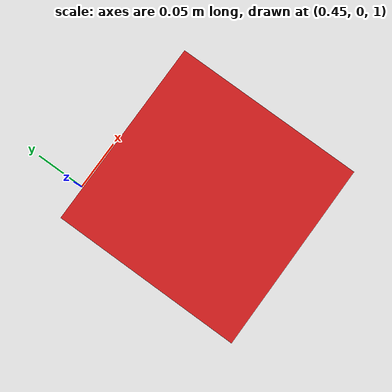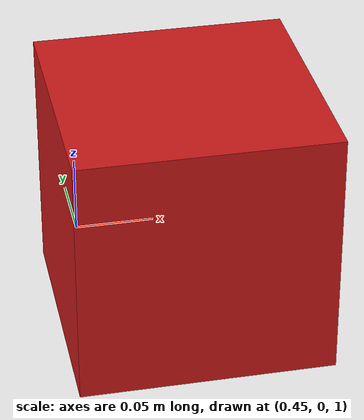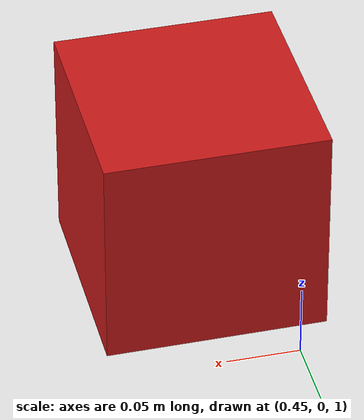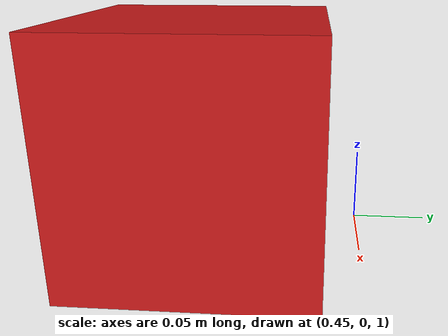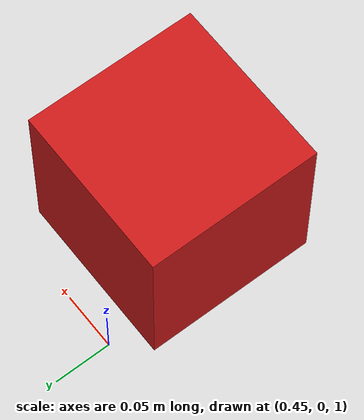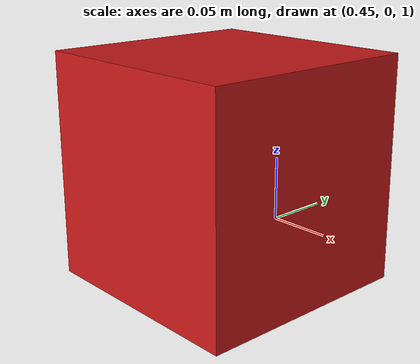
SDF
<?xml version="1.0" ?>
<sdf version="1.6">
  <world name="default">
    <scene>
      <background>0.8117 0.8705 0.8784 1</background>
    </scene>

    <model name="ground_plane">
      <static>true</static>
      <pose>0 0 0 0 0 0</pose>
      <link name="link">
        <collision name="collision">
          <geometry>
            <plane><normal>0 0 1</normal><size>100 100</size></plane>
          </geometry>
        </collision>
        <visual name="visual">
          <cast_shadows>false</cast_shadows>
          <geometry>
            <plane><normal>0 0 1</normal><size>100 100</size></plane>
          </geometry>
          <material>
            <ambient>0.8117 0.8705 0.8784 1</ambient>
            <diffuse>0.8117 0.8705 0.8784 1</diffuse>
          </material>
        </visual>
      </link>
    </model>

    <include><uri>model://sun</uri></include>

    <physics type='ode'>
      <max_step_size>0.001</max_step_size>
      <real_time_factor>1</real_time_factor>
      <real_time_update_rate>0</real_time_update_rate>
      <gravity>0 0 -9.8</gravity>
    </physics>

    <model name="target_box">
      <pose>0.5 -0.10 1.075 0 0 0</pose>
      <static>1</static>
      <link name="link">
        <gravity>0</gravity>
        <collision name="collision">
          <geometry>
            <box><size>0.15 0.15 0.15</size></box>
          </geometry>
        </collision>
        <visual name="visual">
          <geometry>
            <box><size>0.15 0.15 0.15</size></box>
          </geometry>
          <material>
            <ambient>0.8 0.1 0.1 1</ambient>
            <diffuse>0.8 0.1 0.1 1</diffuse>
          </material>
        </visual>
      </link>
    </model>

  </world>
</sdf>
